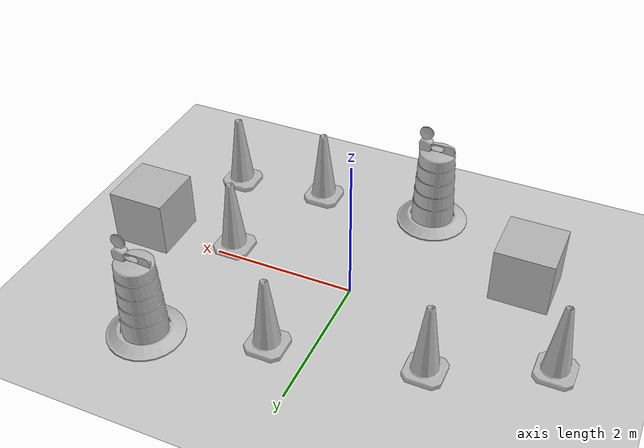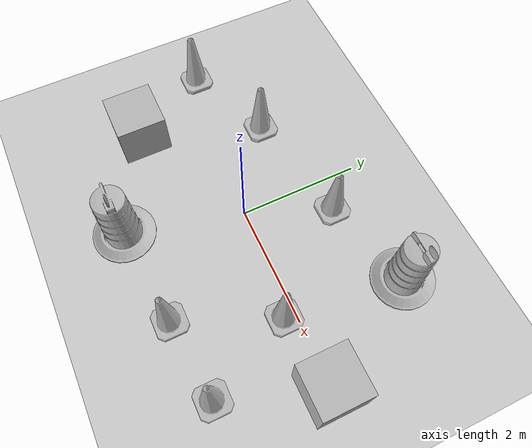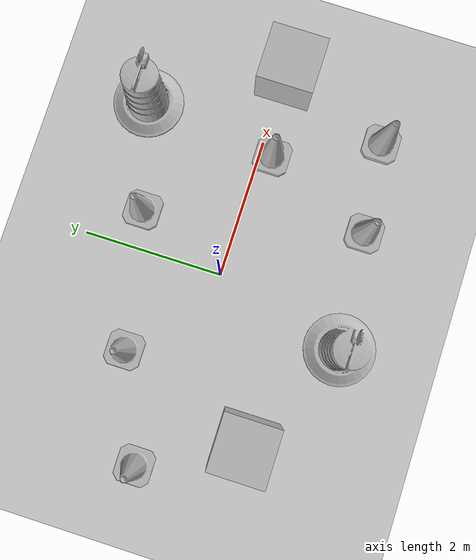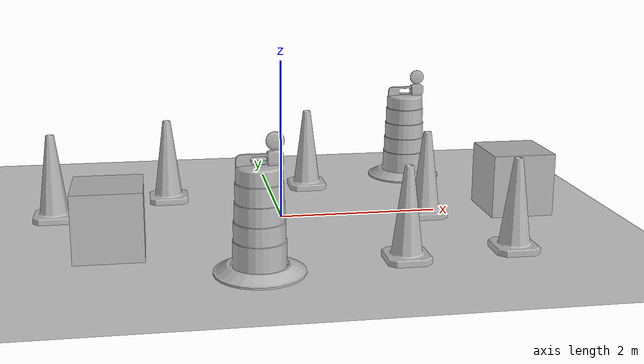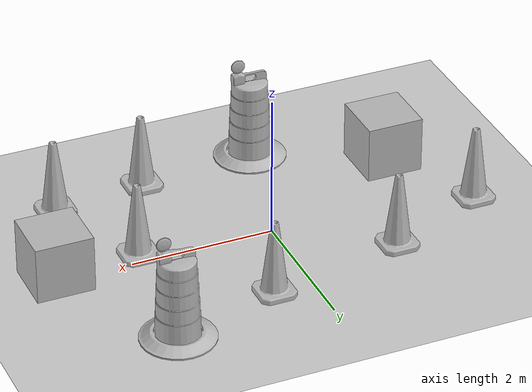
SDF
<sdf version="1.7">
 <world name="default">
  <light name="sun" type="directional">
   <pose>0 0 10 0 -0 0</pose>
   <diffuse>0.8 0.8 0.8 1</diffuse>
   <specular>0.2 0.2 0.2 1</specular>
   <attenuation>
    <range>1000</range>
    <constant>0.9</constant>
    <linear>0.01</linear>
    <quadratic>0.001</quadratic>
   </attenuation>
   <direction>-0.5 0.1 -0.9</direction>
   <spot><inner_angle>0</inner_angle><outer_angle>0</outer_angle><falloff>0</falloff></spot>
  </light>
  <model name="ground_plane">
   <static>1</static>
   <link name="link">
    <collision name="collision">
     <geometry><plane><normal>0 0 1</normal><size>100 100</size></plane></geometry>
     <surface><friction><ode><mu>100</mu><mu2>50</mu2></ode></friction></surface>
    </collision>
    <visual name="visual">
     <cast_shadows>0</cast_shadows>
     <geometry><plane><normal>0 0 1</normal><size>100 100</size></plane></geometry>
     <material>
      <script><uri>file://media/materials/scripts/gazebo.material</uri><name>Gazebo/Grey</name></script>
     </material>
    </visual>
   </link>
  </model>
  <gravity>0 0 -9.8</gravity>
  <magnetic_field>6e-06 2.3e-05 -4.2e-05</magnetic_field>
  <atmosphere type="adiabatic"/>
  <physics type="ode">
   <max_step_size>0.001</max_step_size>
   <real_time_factor>1</real_time_factor>
   <real_time_update_rate>1000</real_time_update_rate>
  </physics>
  <scene><ambient>0.4 0.4 0.4 1</ambient><background>0.7 0.7 0.7 1</background><shadows>1</shadows></scene>
  <audio><device>default</device></audio>
  <spherical_coordinates>
   <surface_model>EARTH_WGS84</surface_model>
   <latitude_deg>0</latitude_deg>
   <longitude_deg>0</longitude_deg>
   <elevation>0</elevation>
   <heading_deg>0</heading_deg>
  </spherical_coordinates>
  <model name="Construction Barrel">
   <link name="link">
    <inertial>
     <pose>0 0 0.4 0 -0 0</pose>
     <mass>500</mass>
     <inertia><ixx>51.2096</ixx><iyy>51.2096</iyy><izz>25</izz><ixy>0</ixy><ixz>0</ixz><iyz>0</iyz></inertia>
    </inertial>
    <collision name="collision">
     <geometry><mesh><uri>model://construction_barrel/meshes/construction_barrel.dae</uri></mesh></geometry>
    </collision>
    <visual name="visual">
     <geometry><mesh><uri>model://construction_barrel/meshes/construction_barrel.dae</uri></mesh></geometry>
    </visual>
   </link>
   <pose>2.05989 1.74995 0 0 0 -3.6e-05</pose>
  </model>
  <model name="Construction Cone">
   <link name="link">
    <collision name="collision">
     <geometry>
      <mesh><scale>10 10 10</scale><uri>model://construction_cone/meshes/construction_cone.dae</uri></mesh>
     </geometry>
    </collision>
    <visual name="visual">
     <geometry>
      <mesh><scale>10 10 10</scale><uri>model://construction_cone/meshes/construction_cone.dae</uri></mesh>
     </geometry>
    </visual>
    <inertial>
     <inertia><ixx>1</ixx><ixy>0</ixy><ixz>0</ixz><iyy>1</iyy><iyz>0</iyz><izz>1</izz></inertia>
     <mass>1</mass>
    </inertial>
   </link>
   <pose>1.17344 -1.75346 -1e-05 0 1e-06 0</pose>
  </model>
  <model name="Construction Cone_0">
   <link name="link">
    <collision name="collision">
     <geometry>
      <mesh><scale>10 10 10</scale><uri>model://construction_cone/meshes/construction_cone.dae</uri></mesh>
     </geometry>
    </collision>
    <visual name="visual">
     <geometry>
      <mesh><scale>10 10 10</scale><uri>model://construction_cone/meshes/construction_cone.dae</uri></mesh>
     </geometry>
    </visual>
    <inertial>
     <inertia><ixx>1</ixx><ixy>0</ixy><ixz>0</ixz><iyy>1</iyy><iyz>0</iyz><izz>1</izz></inertia>
     <mass>1</mass>
    </inertial>
   </link>
   <pose>-1.4 0.95 -0 0 -0 0</pose>
  </model>
  <model name="number1">
   <pose>3.04 -0.060002 0.4 0 -0 0</pose>
   <static>1</static>
   <link name="link">
    <visual name="visual">
     <geometry><mesh><uri>model://number1/meshes/number.dae</uri></mesh></geometry>
     <material>
      <script>
       <uri>model://number1/materials/scripts</uri>
       <uri>model://number1/materials/textures</uri>
       <name>Number/One</name>
      </script>
     </material>
    </visual>
   </link>
  </model>
  <model name="number9">
   <pose>-2.11243 -1.01271 0.4 0 -0 0</pose>
   <static>1</static>
   <link name="link">
    <visual name="visual">
     <geometry><mesh><uri>model://number1/meshes/number.dae</uri></mesh></geometry>
     <material>
      <script>
       <uri>model://number9/materials/scripts</uri>
       <uri>model://number9/materials/textures</uri>
       <name>Number/Nine</name>
      </script>
     </material>
    </visual>
   </link>
  </model>
  <model name="Construction Barrel_clone">
   <link name="link">
    <inertial>
     <pose>0 0 0.4 0 -0 0</pose>
     <mass>500</mass>
     <inertia><ixx>51.2096</ixx><iyy>51.2096</iyy><izz>25</izz><ixy>0</ixy><ixz>0</ixz><iyz>0</iyz></inertia>
    </inertial>
    <collision name="collision">
     <geometry><mesh><uri>model://construction_barrel/meshes/construction_barrel.dae</uri></mesh></geometry>
    </collision>
    <visual name="visual">
     <geometry><mesh><uri>model://construction_barrel/meshes/construction_barrel.dae</uri></mesh></geometry>
    </visual>
   </link>
   <pose>-0.492376 -1.89417 -2e-06 4e-06 7e-06 -3.5e-05</pose>
  </model>
  <model name="Construction Cone_0_clone">
   <link name="link">
    <collision name="collision">
     <geometry>
      <mesh><scale>10 10 10</scale><uri>model://construction_cone/meshes/construction_cone.dae</uri></mesh>
     </geometry>
    </collision>
    <visual name="visual">
     <geometry>
      <mesh><scale>10 10 10</scale><uri>model://construction_cone/meshes/construction_cone.dae</uri></mesh>
     </geometry>
    </visual>
    <inertial>
     <inertia><ixx>1</ixx><ixy>0</ixy><ixz>0</ixz><iyy>1</iyy><iyz>0</iyz><izz>1</izz></inertia>
     <mass>1</mass>
    </inertial>
   </link>
   <pose>0.545404 1.33132 -0 0 -1e-06 0</pose>
  </model>
  <model name="Construction Cone_0_clone_0">
   <link name="link">
    <collision name="collision">
     <geometry>
      <mesh><scale>10 10 10</scale><uri>model://construction_cone/meshes/construction_cone.dae</uri></mesh>
     </geometry>
    </collision>
    <visual name="visual">
     <geometry>
      <mesh><scale>10 10 10</scale><uri>model://construction_cone/meshes/construction_cone.dae</uri></mesh>
     </geometry>
    </visual>
    <inertial>
     <inertia><ixx>1</ixx><ixy>0</ixy><ixz>0</ixz><iyy>1</iyy><iyz>0</iyz><izz>1</izz></inertia>
     <mass>1</mass>
    </inertial>
   </link>
   <pose>1.83916 -0.183264 -0 0 0 -0.000297</pose>
  </model>
  <model name="Construction Cone_0_clone_1">
   <link name="link">
    <collision name="collision">
     <geometry>
      <mesh><scale>10 10 10</scale><uri>model://construction_cone/meshes/construction_cone.dae</uri></mesh>
     </geometry>
    </collision>
    <visual name="visual">
     <geometry>
      <mesh><scale>10 10 10</scale><uri>model://construction_cone/meshes/construction_cone.dae</uri></mesh>
     </geometry>
    </visual>
    <inertial>
     <inertia><ixx>1</ixx><ixy>0</ixy><ixz>0</ixz><iyy>1</iyy><iyz>0</iyz><izz>1</izz></inertia>
     <mass>1</mass>
    </inertial>
   </link>
   <pose>-2.84836 0.321605 -0 0 -0 0</pose>
  </model>
  <model name="Construction Cone_0_clone_2">
   <link name="link">
    <collision name="collision">
     <geometry>
      <mesh><scale>10 10 10</scale><uri>model://construction_cone/meshes/construction_cone.dae</uri></mesh>
     </geometry>
    </collision>
    <visual name="visual">
     <geometry>
      <mesh><scale>10 10 10</scale><uri>model://construction_cone/meshes/construction_cone.dae</uri></mesh>
     </geometry>
    </visual>
    <inertial>
     <inertia><ixx>1</ixx><ixy>0</ixy><ixz>0</ixz><iyy>1</iyy><iyz>0</iyz><izz>1</izz></inertia>
     <mass>1</mass>
    </inertial>
   </link>
   <pose>2.48069 -1.61368 -0 0 -0 0</pose>
  </model>
 </world>
</sdf>
